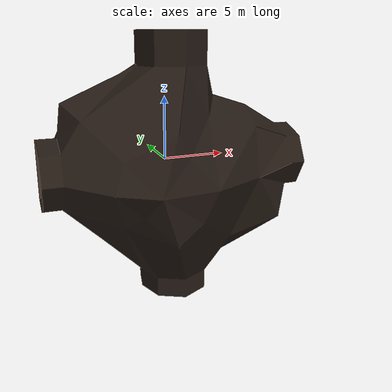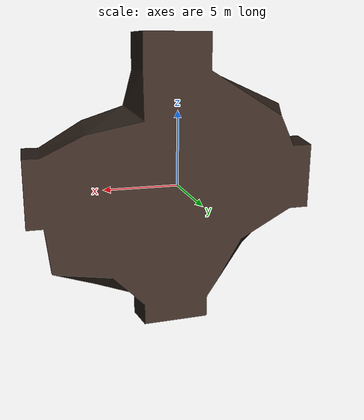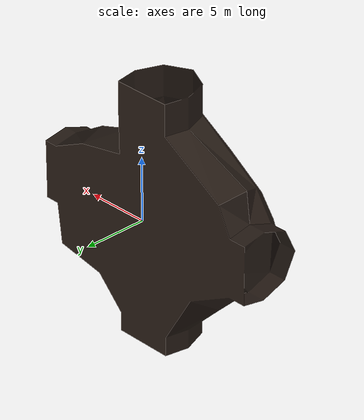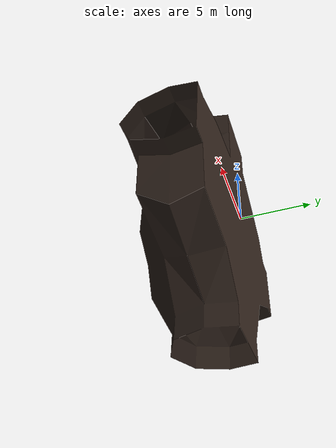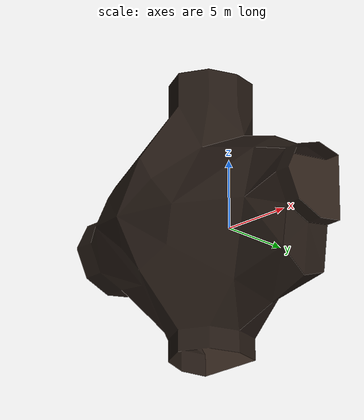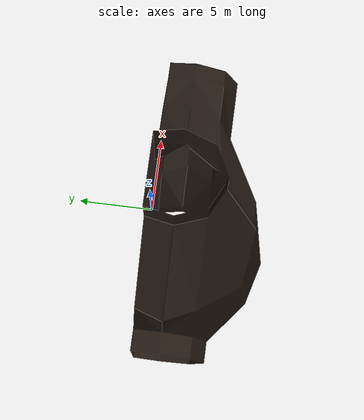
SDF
<?xml version="1.0"?>
<sdf version="1.6">
  <model name="cave_tile_6">
    <static>true</static>
    <link name="link">
      <pose>0 0 0 1.570796 0 0</pose>
      <collision name="collision">
        <geometry>
          <mesh>
            <uri>model://cave_tile_6/meshes/cave_tile_6.dae</uri>
          </mesh>
        </geometry>
      </collision>
      <visual name="visual">
        <geometry>
          <mesh>
            <uri>model://cave_tile_6/meshes/cave_tile_6.dae</uri>
          </mesh>
        </geometry>
      </visual>
    </link>
  </model>
</sdf>
